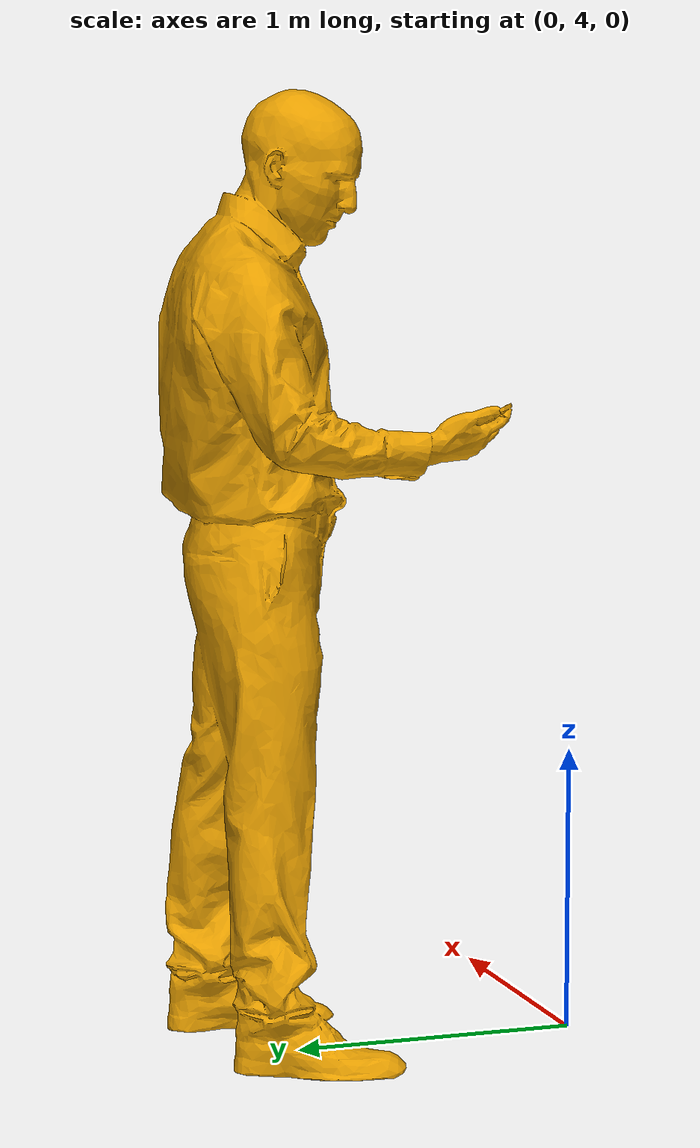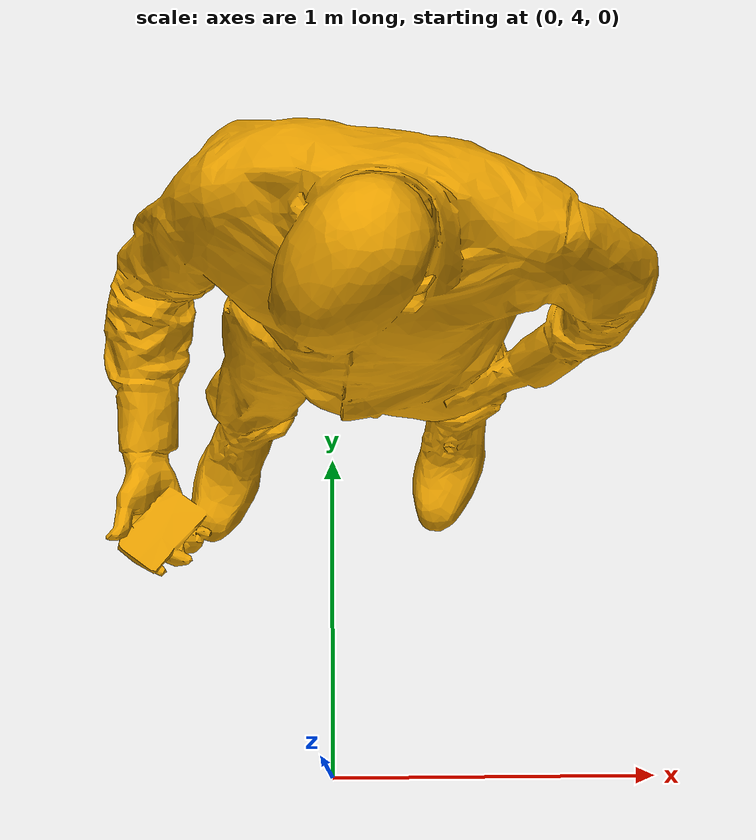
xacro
<?xml version="1.0"?>

<robot>

   <!-- Main quadrotor link -->
    <link name="human_link">
      <inertial>
        <mass value="1.477" />
        <origin xyz="0 5 0" />
        <inertia ixx="0.01152" ixy="0.0" ixz="0.0" iyy="0.01152" iyz="0.0" izz="0.0218" />
      </inertial>

      <visual>
        <origin xyz="0 5 0" rpy="0 0 0" />
        <geometry>
          <mesh filename="package://cvg_sim_gazebo/meshes/human4/BusinessMan.dae"
		scale ="2 2 2"/>
	 </geometry>
      </visual>

      <collision>
        <origin xyz="0 5 0" rpy="0 0 0" />
        <geometry>
	   <mesh filename="package://cvg_sim_gazebo/meshes/human4/BusinessMan.dae"
		scale ="2 2 2"/>
        </geometry>
      </collision>
    </link>

    <gazebo reference="human_link">
      <turnGravityOff>false</turnGravityOff>
    </gazebo>

</robot>
